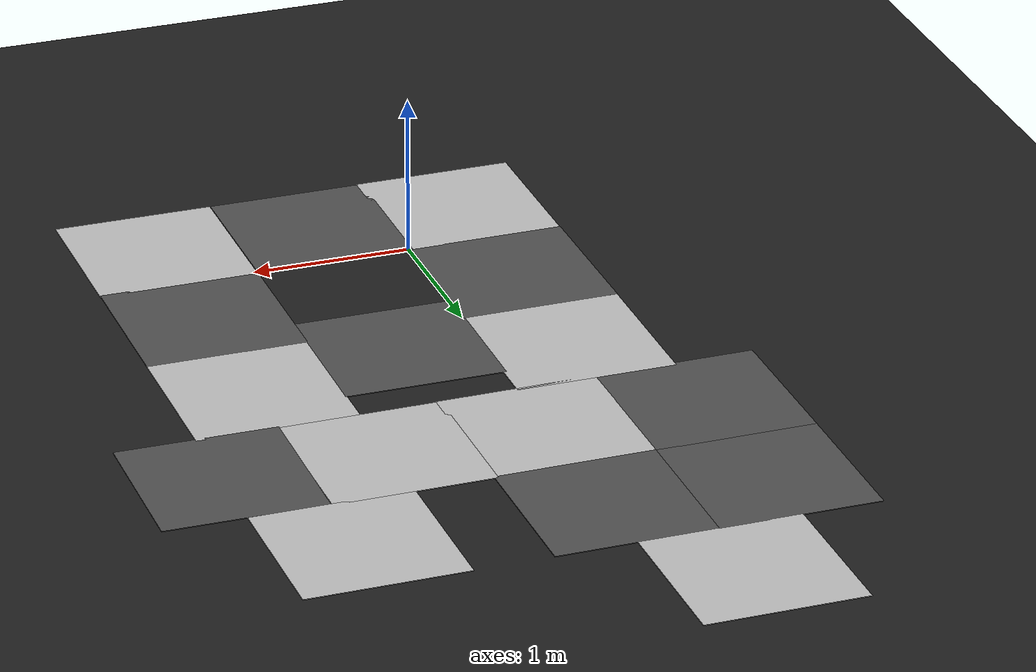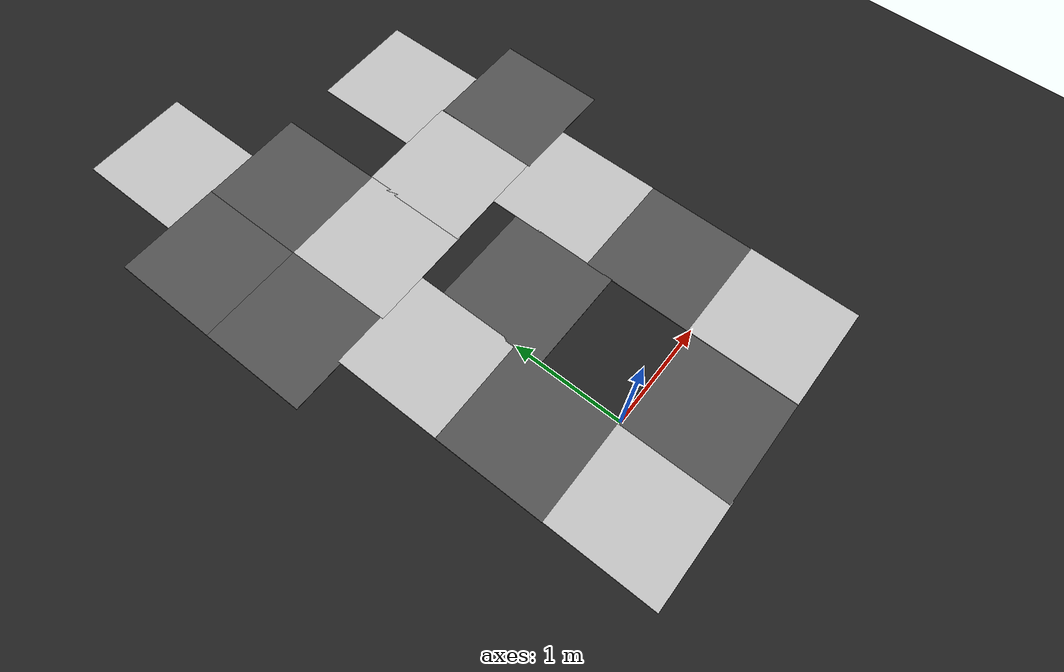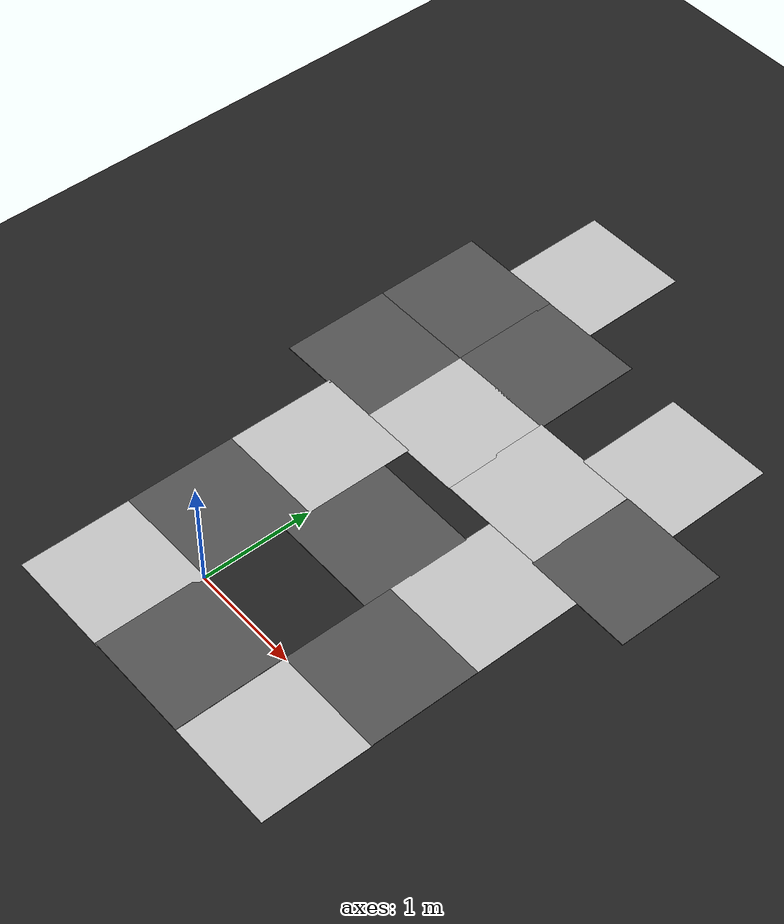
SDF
<sdf version="1.6">
 <world name="default">
  <light name="sun" type="directional">
   <pose>0 0 10 0 -0 0</pose>
   <diffuse>0.8 0.8 0.8 1</diffuse>
   <specular>0.2 0.2 0.2 1</specular>
   <attenuation>
    <range>1000</range>
    <constant>0.9</constant>
    <linear>0.01</linear>
    <quadratic>0.001</quadratic>
   </attenuation>
   <direction>-0.5 0.1 -0.9</direction>
  </light>
  <model name="ground_plane">
   <static>1</static>
   <link name="link">
    <collision name="collision">
     <geometry><plane><normal>0 0 1</normal><size>100 100</size></plane></geometry>
     <surface><friction><ode><mu>100</mu><mu2>50</mu2></ode></friction></surface>
    </collision>
    <visual name="visual">
     <cast_shadows>0</cast_shadows>
     <geometry><plane><normal>0 0 1</normal><size>100 100</size></plane></geometry>
     <material>
      <script><uri>file://media/materials/scripts/gazebo.material</uri><name>Gazebo/Black</name></script>
     </material>
    </visual>
   </link>
  </model>
  <gravity>0 0 -9.8</gravity>
  <magnetic_field>6e-06 2.3e-05 -4.2e-05</magnetic_field>
  <atmosphere type="adiabatic"/>
  <physics name="default_physics" default="0" type="ode">
   <max_step_size>0.01</max_step_size>
   <real_time_factor>1</real_time_factor>
   <real_time_update_rate>0</real_time_update_rate>
  </physics>
  <scene><ambient>0.4 0.4 0.4 1</ambient><background>0.7 0.7 0.7 1</background><shadows>1</shadows></scene>
  <spherical_coordinates>
   <surface_model>EARTH_WGS84</surface_model>
   <latitude_deg>0</latitude_deg>
   <longitude_deg>0</longitude_deg>
   <elevation>0</elevation>
   <heading_deg>0</heading_deg>
  </spherical_coordinates>
  <light name="user_directional_light_0" type="directional">
   <pose>-0.125952 -0.010846 1 0 -0 0</pose>
   <diffuse>0.5 0.5 0.5 1</diffuse>
   <specular>0.1 0.1 0.1 1</specular>
   <direction>0.1 0.1 -0.9</direction>
   <attenuation>
    <range>20</range>
    <constant>0.5</constant>
    <linear>0.01</linear>
    <quadratic>0.001</quadratic>
   </attenuation>
  </light>
  <model name="road_plane">
   <static>1</static>
   <link name="link">
    <collision name="collision"><geometry><box><size>0.5 0.5 0.005</size></box></geometry></collision>
    <visual name="visual">
     <cast_shadows>0</cast_shadows>
     <geometry><box><size>1 1 0.005</size></box></geometry>
     <material>
      <script>
       <uri>model://road_plane/materials/scripts</uri>
       <uri>model://road_plane/materials/textures</uri>
       <name>vrc/road</name>
      </script>
     </material>
    </visual>
   </link>
   <pose>0.474748 -0.479591 0 0 -0 0</pose>
  </model>
  <model name="road_diag">
   <static>1</static>
   <link name="link">
    <collision name="collision"><geometry><box><size>0.5 0.5 0.005</size></box></geometry></collision>
    <visual name="visual">
     <cast_shadows>0</cast_shadows>
     <geometry><box><size>1 1 0.005</size></box></geometry>
     <material>
      <script>
       <uri>model://road_diag/materials/scripts</uri>
       <uri>model://road_diag/materials/textures</uri>
       <name>vrc/diag</name>
      </script>
     </material>
    </visual>
   </link>
   <pose>1.47868 -0.480315 0 0 0 -1.57147</pose>
  </model>
  <model name="road_plane_0">
   <static>1</static>
   <link name="link">
    <collision name="collision"><geometry><box><size>0.5 0.5 0.005</size></box></geometry></collision>
    <visual name="visual">
     <cast_shadows>0</cast_shadows>
     <geometry><box><size>1 1 0.005</size></box></geometry>
     <material>
      <script>
       <uri>model://road_plane/materials/scripts</uri>
       <uri>model://road_plane/materials/textures</uri>
       <name>vrc/road</name>
      </script>
     </material>
    </visual>
   </link>
   <pose>1.47608 0.504135 0 0 -0 1.56891</pose>
  </model>
  <model name="road_plane_0_clone">
   <static>1</static>
   <link name="link">
    <collision name="collision"><geometry><box><size>0.5 0.5 0.005</size></box></geometry></collision>
    <visual name="visual">
     <cast_shadows>0</cast_shadows>
     <geometry><box><size>1 1 0.005</size></box></geometry>
     <material>
      <script>
       <uri>model://road_plane/materials/scripts</uri>
       <uri>model://road_plane/materials/textures</uri>
       <name>vrc/road</name>
      </script>
     </material>
    </visual>
   </link>
   <pose>1.97524 2.4827 0 0 0 -1.57826</pose>
  </model>
  <model name="road_diag_0">
   <static>1</static>
   <link name="link">
    <collision name="collision"><geometry><box><size>0.5 0.5 0.005</size></box></geometry></collision>
    <visual name="visual">
     <cast_shadows>0</cast_shadows>
     <geometry><box><size>1 1 0.005</size></box></geometry>
     <material>
      <script>
       <uri>model://road_diag/materials/scripts</uri>
       <uri>model://road_diag/materials/textures</uri>
       <name>vrc/diag</name>
      </script>
     </material>
    </visual>
   </link>
   <pose>0.976842 2.4972 0 0 0 -1.56628</pose>
  </model>
  <model name="road_plane_clone">
   <static>1</static>
   <link name="link">
    <collision name="collision"><geometry><box><size>0.5 0.5 0.005</size></box></geometry></collision>
    <visual name="visual">
     <cast_shadows>0</cast_shadows>
     <geometry><box><size>1 1 0.005</size></box></geometry>
     <material>
      <script>
       <uri>model://road_plane/materials/scripts</uri>
       <uri>model://road_plane/materials/textures</uri>
       <name>vrc/road</name>
      </script>
     </material>
    </visual>
   </link>
   <pose>-0.995511 3.47465 0 0 -0 1.5715</pose>
  </model>
  <model name="road_plane_0_clone_clone">
   <static>1</static>
   <link name="link">
    <collision name="collision"><geometry><box><size>0.5 0.5 0.005</size></box></geometry></collision>
    <visual name="visual">
     <cast_shadows>0</cast_shadows>
     <geometry><box><size>1 1 0.005</size></box></geometry>
     <material>
      <script>
       <uri>model://road_plane/materials/scripts</uri>
       <uri>model://road_plane/materials/textures</uri>
       <name>vrc/road</name>
      </script>
     </material>
    </visual>
   </link>
   <pose>-0.993204 2.47684 0 0 -0 1.57585</pose>
  </model>
  <model name="road_plane_0_clone_clone_clone">
   <static>1</static>
   <link name="link">
    <collision name="collision"><geometry><box><size>0.5 0.5 0.005</size></box></geometry></collision>
    <visual name="visual">
     <cast_shadows>0</cast_shadows>
     <geometry><box><size>1 1 0.005</size></box></geometry>
     <material>
      <script>
       <uri>model://road_plane/materials/scripts</uri>
       <uri>model://road_plane/materials/textures</uri>
       <name>vrc/road</name>
      </script>
     </material>
    </visual>
   </link>
   <pose>-0.495631 0.507392 0 0 0 -1.56646</pose>
  </model>
  <model name="road_diag_clone">
   <static>1</static>
   <link name="link">
    <collision name="collision"><geometry><box><size>0.5 0.5 0.005</size></box></geometry></collision>
    <visual name="visual">
     <cast_shadows>0</cast_shadows>
     <geometry><box><size>1 1 0.005</size></box></geometry>
     <material>
      <script>
       <uri>model://road_diag/materials/scripts</uri>
       <uri>model://road_diag/materials/textures</uri>
       <name>vrc/diag</name>
      </script>
     </material>
    </visual>
   </link>
   <pose>-0.488946 -0.486041 0 0 0 -3.14005</pose>
  </model>
  <model name="road_inter">
   <static>1</static>
   <link name="link">
    <collision name="collision"><geometry><box><size>0.5 0.5 0.005</size></box></geometry></collision>
    <visual name="visual">
     <cast_shadows>0</cast_shadows>
     <geometry><box><size>1 1 0.005</size></box></geometry>
     <material>
      <script>
       <uri>model://road_inter/materials/scripts</uri>
       <uri>model://road_inter/materials/textures</uri>
       <name>vrc/inter</name>
      </script>
     </material>
    </visual>
   </link>
   <pose>1.47728 1.50186 0 0 -0 0</pose>
  </model>
  <model name="road_inter_0">
   <static>1</static>
   <link name="link">
    <collision name="collision"><geometry><box><size>0.5 0.5 0.005</size></box></geometry></collision>
    <visual name="visual">
     <cast_shadows>0</cast_shadows>
     <geometry><box><size>1 1 0.005</size></box></geometry>
     <material>
      <script>
       <uri>model://road_inter/materials/scripts</uri>
       <uri>model://road_inter/materials/textures</uri>
       <name>vrc/inter</name>
      </script>
     </material>
    </visual>
   </link>
   <pose>-0.495351 1.50569 0 0 -0 3.14073</pose>
  </model>
  <model name="road_plane_1">
   <static>1</static>
   <link name="link">
    <collision name="collision"><geometry><box><size>0.5 0.5 0.005</size></box></geometry></collision>
    <visual name="visual">
     <cast_shadows>0</cast_shadows>
     <geometry><box><size>1 1 0.005</size></box></geometry>
     <material>
      <script>
       <uri>model://road_plane/materials/scripts</uri>
       <uri>model://road_plane/materials/textures</uri>
       <name>vrc/road</name>
      </script>
     </material>
    </visual>
   </link>
   <pose>0.483866 1.25702 0 0 -0 3.1377</pose>
  </model>
  <model name="road_diag_0_clone_0">
   <static>1</static>
   <link name="link">
    <collision name="collision"><geometry><box><size>0.5 0.5 0.005</size></box></geometry></collision>
    <visual name="visual">
     <cast_shadows>0</cast_shadows>
     <geometry><box><size>1 1 0.005</size></box></geometry>
     <material>
      <script>
       <uri>model://road_diag/materials/scripts</uri>
       <uri>model://road_diag/materials/textures</uri>
       <name>vrc/diag</name>
      </script>
     </material>
    </visual>
   </link>
   <pose>0.004565 2.48462 0 0 0 -3.13328</pose>
  </model>
  <model name="u_turn">
   <static>1</static>
   <link name="link">
    <collision name="collision"><geometry><box><size>0.5 0.5 0.005</size></box></geometry></collision>
    <visual name="visual">
     <cast_shadows>0</cast_shadows>
     <geometry><box><size>1 1 0.005</size></box></geometry>
     <material>
      <script>
       <uri>model://u_turn/materials/scripts</uri>
       <uri>model://u_turn/materials/textures</uri>
       <name>vrc/u_turn</name>
      </script>
     </material>
    </visual>
   </link>
   <pose>1.47189 3.48193 0 0 -0 1.57508</pose>
  </model>
  <model name="road_plane_clone_clone">
   <static>1</static>
   <link name="link">
    <collision name="collision"><geometry><box><size>0.5 0.5 0.005</size></box></geometry></collision>
    <visual name="visual">
     <cast_shadows>0</cast_shadows>
     <geometry><box><size>1 1 0.005</size></box></geometry>
     <material>
      <script>
       <uri>model://road_plane/materials/scripts</uri>
       <uri>model://road_plane/materials/textures</uri>
       <name>vrc/road</name>
      </script>
     </material>
    </visual>
   </link>
   <pose>-0.005392 3.47431 0 0 0 -1.56425</pose>
  </model>
  <model name="u_turn_clone">
   <static>1</static>
   <link name="link">
    <collision name="collision"><geometry><box><size>0.5 0.5 0.005</size></box></geometry></collision>
    <visual name="visual">
     <cast_shadows>0</cast_shadows>
     <geometry><box><size>1 1 0.005</size></box></geometry>
     <material>
      <script>
       <uri>model://u_turn/materials/scripts</uri>
       <uri>model://u_turn/materials/textures</uri>
       <name>vrc/u_turn</name>
      </script>
     </material>
    </visual>
   </link>
   <pose>-0.506648 4.46995 0 0 -0 1.57508</pose>
  </model>
 </world>
</sdf>
